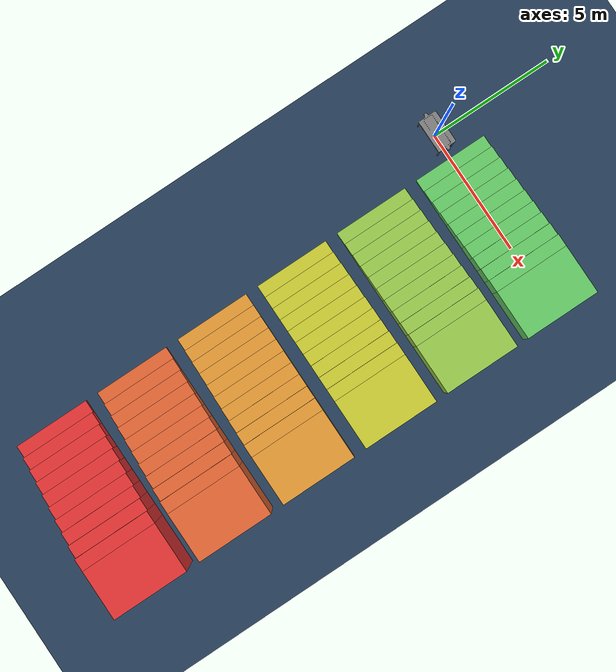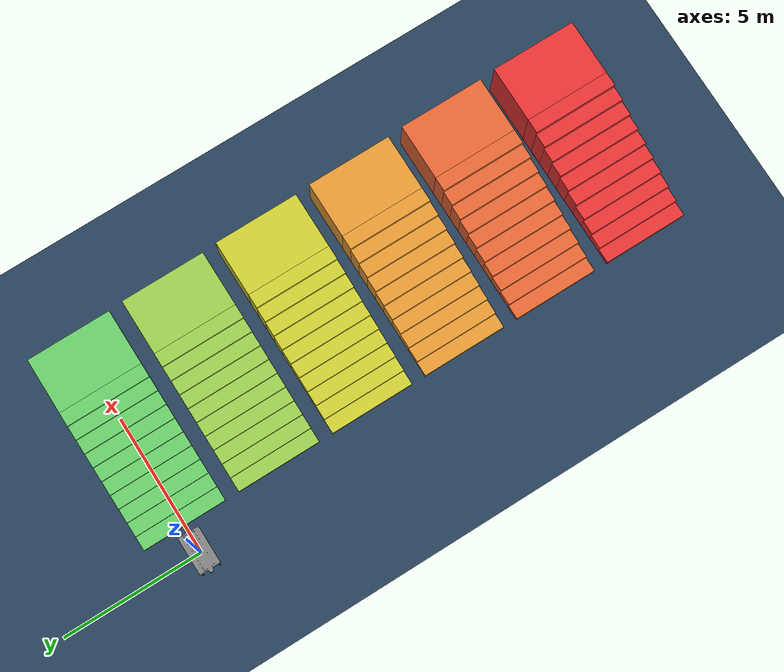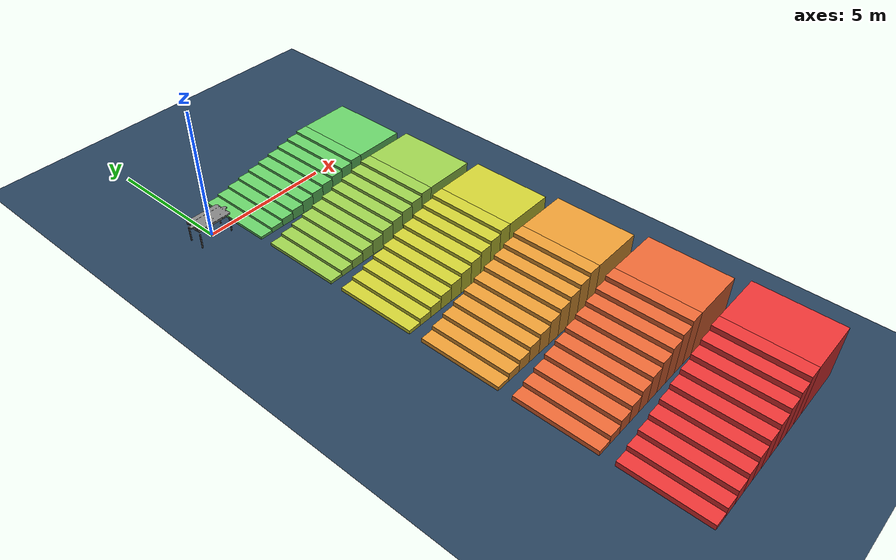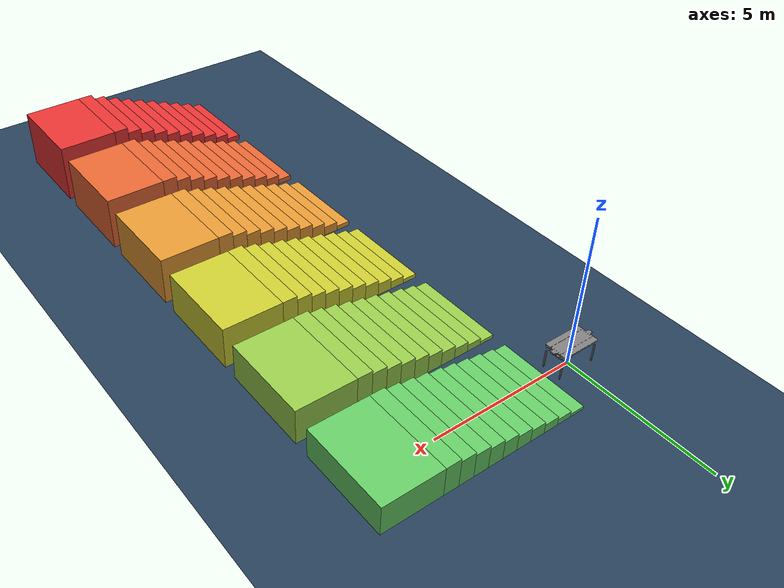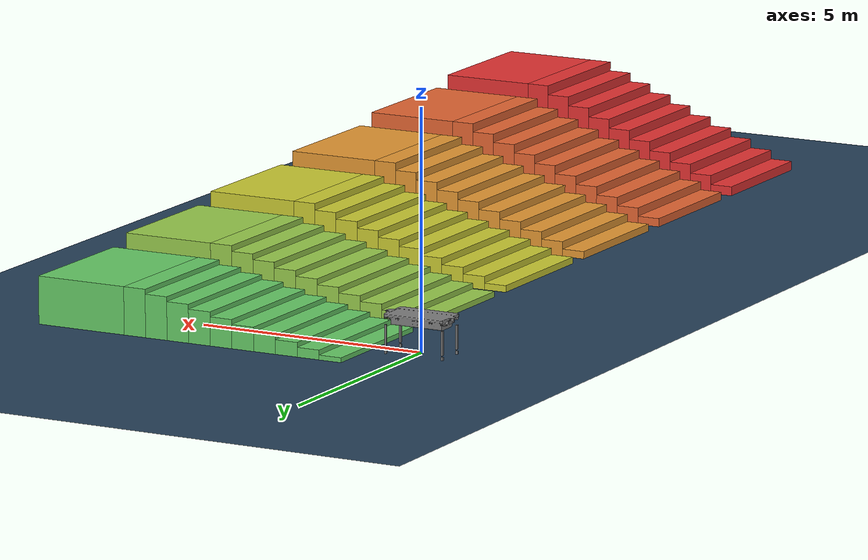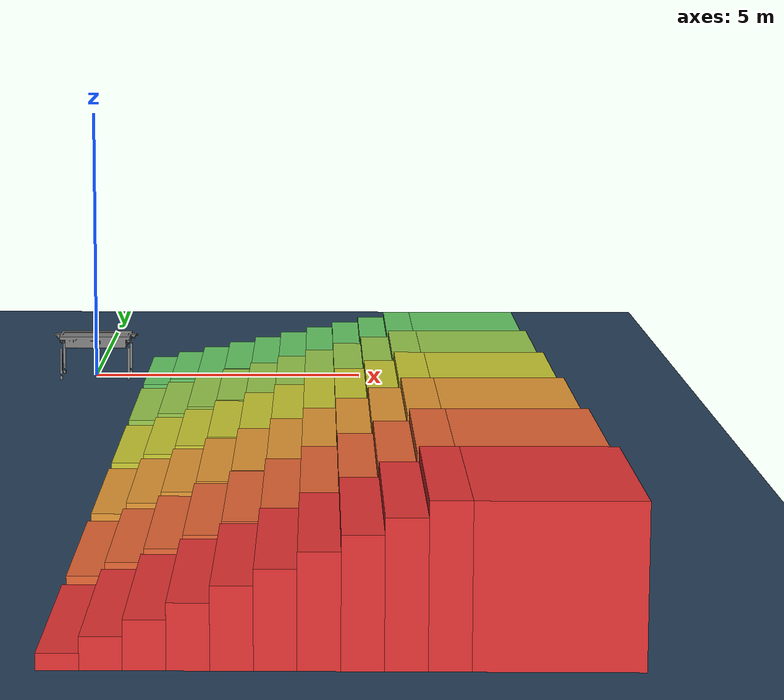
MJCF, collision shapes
<mujoco model="qilin scene">
  <include file="qilin.xml" />

  <statistic center="0 0 0.1" extent="0.8" />

  <visual>
    <headlight diffuse="0.6 0.6 0.6" ambient="0.3 0.3 0.3" specular="0 0 0" />
    <rgba haze="0.15 0.25 0.35 1" />
    <global azimuth="-130" elevation="-20" />
  </visual>

  <asset>
    <texture type="skybox" builtin="gradient" rgb1="0.3 0.5 0.7" rgb2="0 0 0" width="512" height="3072" />
    <texture type="2d" name="groundplane" builtin="checker" mark="edge" rgb1="0.2 0.3 0.4" rgb2="0.1 0.2 0.3" markrgb="0.8 0.8 0.8" width="300" height="300" />
    <material name="groundplane" texture="groundplane" texuniform="true" texrepeat="5 5" reflectance="0.2" />
  </asset>

  <worldbody>
    <light pos="0 0 1.5" dir="0 0 -1" directional="true" />
    <geom name="floor" size="0 0 0.05" type="plane" material="groundplane" />

    <geom type="box" pos="1.25 0 0.05" size="0.25 1.5 0.05" rgba="0.4 0.8 0.4 1" friction="1.2 0.01 0.005"/>
    <geom type="box" pos="1.75 0 0.10" size="0.25 1.5 0.10" rgba="0.4 0.8 0.4 1" friction="1.2 0.01 0.005"/>
    <geom type="box" pos="2.25 0 0.15" size="0.25 1.5 0.15" rgba="0.4 0.8 0.4 1" friction="1.2 0.01 0.005"/>
    <geom type="box" pos="2.75 0 0.20" size="0.25 1.5 0.20" rgba="0.4 0.8 0.4 1" friction="1.2 0.01 0.005"/>
    <geom type="box" pos="3.25 0 0.25" size="0.25 1.5 0.25" rgba="0.4 0.8 0.4 1" friction="1.2 0.01 0.005"/>
    <geom type="box" pos="3.75 0 0.30" size="0.25 1.5 0.30" rgba="0.4 0.8 0.4 1" friction="1.2 0.01 0.005"/>
    <geom type="box" pos="4.25 0 0.35" size="0.25 1.5 0.35" rgba="0.4 0.8 0.4 1" friction="1.2 0.01 0.005"/>
    <geom type="box" pos="4.75 0 0.40" size="0.25 1.5 0.40" rgba="0.4 0.8 0.4 1" friction="1.2 0.01 0.005"/>
    <geom type="box" pos="5.25 0 0.45" size="0.25 1.5 0.45" rgba="0.4 0.8 0.4 1" friction="1.2 0.01 0.005"/>
    <geom type="box" pos="5.75 0 0.50" size="0.25 1.5 0.50" rgba="0.4 0.8 0.4 1" friction="1.2 0.01 0.005"/>
    <geom type="box" pos="7.00 0 0.50" size="1.00 1.5 0.50" rgba="0.4 0.8 0.4 1" friction="1.2 0.01 0.005"/>

    <geom type="box" pos="1.25 -3.5 0.06" size="0.25 1.5 0.06" rgba="0.6 0.8 0.3 1" friction="1.2 0.01 0.005"/>
    <geom type="box" pos="1.75 -3.5 0.12" size="0.25 1.5 0.12" rgba="0.6 0.8 0.3 1" friction="1.2 0.01 0.005"/>
    <geom type="box" pos="2.25 -3.5 0.18" size="0.25 1.5 0.18" rgba="0.6 0.8 0.3 1" friction="1.2 0.01 0.005"/>
    <geom type="box" pos="2.75 -3.5 0.24" size="0.25 1.5 0.24" rgba="0.6 0.8 0.3 1" friction="1.2 0.01 0.005"/>
    <geom type="box" pos="3.25 -3.5 0.30" size="0.25 1.5 0.30" rgba="0.6 0.8 0.3 1" friction="1.2 0.01 0.005"/>
    <geom type="box" pos="3.75 -3.5 0.36" size="0.25 1.5 0.36" rgba="0.6 0.8 0.3 1" friction="1.2 0.01 0.005"/>
    <geom type="box" pos="4.25 -3.5 0.42" size="0.25 1.5 0.42" rgba="0.6 0.8 0.3 1" friction="1.2 0.01 0.005"/>
    <geom type="box" pos="4.75 -3.5 0.48" size="0.25 1.5 0.48" rgba="0.6 0.8 0.3 1" friction="1.2 0.01 0.005"/>
    <geom type="box" pos="5.25 -3.5 0.54" size="0.25 1.5 0.54" rgba="0.6 0.8 0.3 1" friction="1.2 0.01 0.005"/>
    <geom type="box" pos="5.75 -3.5 0.60" size="0.25 1.5 0.60" rgba="0.6 0.8 0.3 1" friction="1.2 0.01 0.005"/>
    <geom type="box" pos="7.00 -3.5 0.60" size="1.00 1.5 0.60" rgba="0.6 0.8 0.3 1" friction="1.2 0.01 0.005"/>

    <geom type="box" pos="1.25 -7.0 0.07" size="0.25 1.5 0.07" rgba="0.8 0.8 0.2 1" friction="1.2 0.01 0.005"/>
    <geom type="box" pos="1.75 -7.0 0.14" size="0.25 1.5 0.14" rgba="0.8 0.8 0.2 1" friction="1.2 0.01 0.005"/>
    <geom type="box" pos="2.25 -7.0 0.21" size="0.25 1.5 0.21" rgba="0.8 0.8 0.2 1" friction="1.2 0.01 0.005"/>
    <geom type="box" pos="2.75 -7.0 0.28" size="0.25 1.5 0.28" rgba="0.8 0.8 0.2 1" friction="1.2 0.01 0.005"/>
    <geom type="box" pos="3.25 -7.0 0.35" size="0.25 1.5 0.35" rgba="0.8 0.8 0.2 1" friction="1.2 0.01 0.005"/>
    <geom type="box" pos="3.75 -7.0 0.42" size="0.25 1.5 0.42" rgba="0.8 0.8 0.2 1" friction="1.2 0.01 0.005"/>
    <geom type="box" pos="4.25 -7.0 0.49" size="0.25 1.5 0.49" rgba="0.8 0.8 0.2 1" friction="1.2 0.01 0.005"/>
    <geom type="box" pos="4.75 -7.0 0.56" size="0.25 1.5 0.56" rgba="0.8 0.8 0.2 1" friction="1.2 0.01 0.005"/>
    <geom type="box" pos="5.25 -7.0 0.63" size="0.25 1.5 0.63" rgba="0.8 0.8 0.2 1" friction="1.2 0.01 0.005"/>
    <geom type="box" pos="5.75 -7.0 0.70" size="0.25 1.5 0.70" rgba="0.8 0.8 0.2 1" friction="1.2 0.01 0.005"/>
    <geom type="box" pos="7.00 -7.0 0.70" size="1.00 1.5 0.70" rgba="0.8 0.8 0.2 1" friction="1.2 0.01 0.005"/>

    <geom type="box" pos="1.25 -10.5 0.08" size="0.25 1.5 0.08" rgba="0.9 0.6 0.2 1" friction="1.2 0.01 0.005"/>
    <geom type="box" pos="1.75 -10.5 0.16" size="0.25 1.5 0.16" rgba="0.9 0.6 0.2 1" friction="1.2 0.01 0.005"/>
    <geom type="box" pos="2.25 -10.5 0.24" size="0.25 1.5 0.24" rgba="0.9 0.6 0.2 1" friction="1.2 0.01 0.005"/>
    <geom type="box" pos="2.75 -10.5 0.32" size="0.25 1.5 0.32" rgba="0.9 0.6 0.2 1" friction="1.2 0.01 0.005"/>
    <geom type="box" pos="3.25 -10.5 0.40" size="0.25 1.5 0.40" rgba="0.9 0.6 0.2 1" friction="1.2 0.01 0.005"/>
    <geom type="box" pos="3.75 -10.5 0.48" size="0.25 1.5 0.48" rgba="0.9 0.6 0.2 1" friction="1.2 0.01 0.005"/>
    <geom type="box" pos="4.25 -10.5 0.56" size="0.25 1.5 0.56" rgba="0.9 0.6 0.2 1" friction="1.2 0.01 0.005"/>
    <geom type="box" pos="4.75 -10.5 0.64" size="0.25 1.5 0.64" rgba="0.9 0.6 0.2 1" friction="1.2 0.01 0.005"/>
    <geom type="box" pos="5.25 -10.5 0.72" size="0.25 1.5 0.72" rgba="0.9 0.6 0.2 1" friction="1.2 0.01 0.005"/>
    <geom type="box" pos="5.75 -10.5 0.80" size="0.25 1.5 0.80" rgba="0.9 0.6 0.2 1" friction="1.2 0.01 0.005"/>
    <geom type="box" pos="7.00 -10.5 0.80" size="1.00 1.5 0.80" rgba="0.9 0.6 0.2 1" friction="1.2 0.01 0.005"/>

    <geom type="box" pos="1.25 -14.0 0.09" size="0.25 1.5 0.09" rgba="0.9 0.4 0.2 1" friction="1.2 0.01 0.005"/>
    <geom type="box" pos="1.75 -14.0 0.18" size="0.25 1.5 0.18" rgba="0.9 0.4 0.2 1" friction="1.2 0.01 0.005"/>
    <geom type="box" pos="2.25 -14.0 0.27" size="0.25 1.5 0.27" rgba="0.9 0.4 0.2 1" friction="1.2 0.01 0.005"/>
    <geom type="box" pos="2.75 -14.0 0.36" size="0.25 1.5 0.36" rgba="0.9 0.4 0.2 1" friction="1.2 0.01 0.005"/>
    <geom type="box" pos="3.25 -14.0 0.45" size="0.25 1.5 0.45" rgba="0.9 0.4 0.2 1" friction="1.2 0.01 0.005"/>
    <geom type="box" pos="3.75 -14.0 0.54" size="0.25 1.5 0.54" rgba="0.9 0.4 0.2 1" friction="1.2 0.01 0.005"/>
    <geom type="box" pos="4.25 -14.0 0.63" size="0.25 1.5 0.63" rgba="0.9 0.4 0.2 1" friction="1.2 0.01 0.005"/>
    <geom type="box" pos="4.75 -14.0 0.72" size="0.25 1.5 0.72" rgba="0.9 0.4 0.2 1" friction="1.2 0.01 0.005"/>
    <geom type="box" pos="5.25 -14.0 0.81" size="0.25 1.5 0.81" rgba="0.9 0.4 0.2 1" friction="1.2 0.01 0.005"/>
    <geom type="box" pos="5.75 -14.0 0.90" size="0.25 1.5 0.90" rgba="0.9 0.4 0.2 1" friction="1.2 0.01 0.005"/>
    <geom type="box" pos="7.00 -14.0 0.90" size="1.00 1.5 0.90" rgba="0.9 0.4 0.2 1" friction="1.2 0.01 0.005"/>

    <geom type="box" pos="1.25 -17.5 0.10" size="0.25 1.5 0.10" rgba="0.9 0.2 0.2 1" friction="1.2 0.01 0.005"/>
    <geom type="box" pos="1.75 -17.5 0.20" size="0.25 1.5 0.20" rgba="0.9 0.2 0.2 1" friction="1.2 0.01 0.005"/>
    <geom type="box" pos="2.25 -17.5 0.30" size="0.25 1.5 0.30" rgba="0.9 0.2 0.2 1" friction="1.2 0.01 0.005"/>
    <geom type="box" pos="2.75 -17.5 0.40" size="0.25 1.5 0.40" rgba="0.9 0.2 0.2 1" friction="1.2 0.01 0.005"/>
    <geom type="box" pos="3.25 -17.5 0.50" size="0.25 1.5 0.50" rgba="0.9 0.2 0.2 1" friction="1.2 0.01 0.005"/>
    <geom type="box" pos="3.75 -17.5 0.60" size="0.25 1.5 0.60" rgba="0.9 0.2 0.2 1" friction="1.2 0.01 0.005"/>
    <geom type="box" pos="4.25 -17.5 0.70" size="0.25 1.5 0.70" rgba="0.9 0.2 0.2 1" friction="1.2 0.01 0.005"/>
    <geom type="box" pos="4.75 -17.5 0.80" size="0.25 1.5 0.80" rgba="0.9 0.2 0.2 1" friction="1.2 0.01 0.005"/>
    <geom type="box" pos="5.25 -17.5 0.90" size="0.25 1.5 0.90" rgba="0.9 0.2 0.2 1" friction="1.2 0.01 0.005"/>
    <geom type="box" pos="5.75 -17.5 1.00" size="0.25 1.5 1.00" rgba="0.9 0.2 0.2 1" friction="1.2 0.01 0.005"/>
    <geom type="box" pos="7.00 -17.5 1.00" size="1.00 1.5 1.00" rgba="0.9 0.2 0.2 1" friction="1.2 0.01 0.005"/>

  </worldbody>
</mujoco>

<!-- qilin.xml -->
<mujoco model="legged_yscgo">
  <compiler angle="radian" meshdir="assets" autolimits="true"/>

  <default>
    <default class="yscgo">
      <geom type="mesh"/>
      <joint damping="1" armature="0.1"/>
      <default class="visual">
        <geom contype="0" conaffinity="0" group="2"/>
      </default>
      <default class="collision">
        <geom group="3" mass="0" density="0"/>
      </default>
      <site size="0.001" rgba="0.5 0.5 0.5 0.3" group="4"/>
    </default>
  </default>

  <asset>
    <mesh name="base_link" file="base_link.STL"/>
    <mesh name="FR_hip_link" file="RF-hip-link.STL"/>
    <mesh name="FR_thigh_link" file="RF-thigh-link.STL"/>
    <mesh name="FR_calf_link" file="RF-calf-link.STL"/>
    <mesh name="FL_hip_link" file="LF-hip-link.STL"/>
    <mesh name="FL_thigh_link" file="LF-thigh-link.STL"/>
    <mesh name="FL_calf_link" file="LF-calf-link.STL"/>
    <mesh name="RR_hip_link" file="RB-hip-link.STL"/>
    <mesh name="RR_thigh_link" file="RB-thigh-link.STL"/>
    <mesh name="RR_calf_link" file="RB-calf-link.STL"/>
    <mesh name="RL_hip_link" file="LB-hip-link.STL"/>
    <mesh name="RL_thigh_link" file="LB-thigh-link.STL"/>
    <mesh name="RL_calf_link" file="LB-calf-link.STL"/>
  </asset>

  <worldbody>
    <body name="base" pos="0 0 0.8" childclass="yscgo">
      <inertial pos="0.002148 -0.000388 -0.103293" mass="159.277" fullinertia="6.637751 24.08774 28.83469 -0.01443162 0.003251106 -0.002196445"/>
      <joint name="floating_base_joint" type="free"/>

      <geom type="mesh" mesh="base_link" class="visual" rgba="0.54901960784 0.04705882353 0.0431372549 1"/>
      <geom type="mesh" mesh="base_link" class="collision"/>

      <site name="imu" pos="0 0 0"/>

      <body name="FR_hip" pos="0.641 -0.309 -0.097">
        <inertial pos="-0.170224 0.000828 -0.087717" mass="12.360" fullinertia="0.03765034 0.2272831 0.2112761 -0.001578884 0.01147413 -0.000346967"/>
        <joint name="FR_hip_joint" axis="1 0 0" range="-0.349 0.349"/>
        <geom type="mesh" mesh="FR_hip_link" class="visual" rgba="0.949019 0.752941 0.337255 1"/>

        <body name="FR_thigh" pos="0 0 -0.1065">
          <inertial pos="0.01379 0.000024 -0.3409" mass="11.479" fullinertia="0.3640088 0.366903 0.03063003 -0.000009152 -0.0134279 0.000023857"/>
          <joint name="FR_thigh_joint" axis="0 1 0" range="-1.04719755 1.22173047"/>
          <geom type="mesh" mesh="FR_thigh_link" class="visual" rgba="0.949019 0.752941 0.337255 1"/>
          <geom type="box" size="0.25 0.02 0.02" pos="0 0 -0.27" euler="0 1.57079632 0" class="collision"/>

          <body name="FR_calf" pos="0 0 -0.55">
            <inertial pos="-0.04685 -0.000003 -0.2845" mass="4.915" fullinertia="0.175327 0.1747803 0.01075076 -0.000000076 -0.01221075 0.000004301"/>
            <joint name="FR_calf_joint" axis="0 1 0" range="-2.7925268 -0.01745329"/>
            <geom type="mesh" mesh="FR_calf_link" class="visual" rgba="0.54901960784 0.04705882353 0.0431372549 1"/>
            <geom type="box" size="0.25 0.0175 0.0225" pos="0 0 -0.25" euler="0 1.57079632 0" class="collision"/>

            <body name="FR_foot" pos="-0.08 0 -0.4936">
              <inertial pos="0 0 0" mass="0.0450952" fullinertia="3.2581282e-05 3.2581282e-05 3.2581282e-05 0 0 0"/>
              <geom type="sphere" size="0.0425" class="visual" rgba="0.949019 0.752941 0.337255 1"/>
              <geom type="sphere" size="0.0425" group="1" rgba="0.949 0.753 0.337 1"/>
              <site name="FR_foot_touch" pos="0 0 0"/>
            </body>
          </body>
        </body>
      </body>

      <body name="FL_hip" pos="0.641 0.309 -0.097">
        <inertial pos="-0.1702 -0.000782 -0.08772" mass="12.360" fullinertia="0.03765126 0.2272831 0.211277 0.001607696 0.01147413 0.00033408"/>
        <joint name="FL_hip_joint" axis="1 0 0" range="-0.349 0.349"/>
        <geom type="mesh" mesh="FL_hip_link" class="visual" rgba="0.949019 0.752941 0.337255 1"/>

        <body name="FL_thigh" pos="0 0 -0.1065">
          <inertial pos="0.01379 0.000024 -0.3409" mass="11.479" fullinertia="0.3640088 0.366903 0.03063003 -0.000009152 -0.0134279 0.000023857"/>
          <joint name="FL_thigh_joint" axis="0 1 0" range="-1.04719755 1.22173047"/>
          <geom type="mesh" mesh="FL_thigh_link" class="visual" rgba="0.949019 0.752941 0.337255 1"/>
          <geom type="box" size="0.25 0.02 0.02" pos="0 0 -0.27" euler="0 1.57079632 0" class="collision"/>

          <body name="FL_calf" pos="0 0 -0.55">
            <inertial pos="-0.04685 -0.000003 -0.2845" mass="4.915" fullinertia="0.175327 0.1747803 0.01075076 -0.000000076 -0.01221075 0.000004301"/>
            <joint name="FL_calf_joint" axis="0 1 0" range="-2.7925268 -0.01745329"/>
            <geom type="mesh" mesh="FL_calf_link" class="visual" rgba="0.54901960784 0.04705882353 0.0431372549 1"/>
            <geom type="box" size="0.25 0.0175 0.0225" pos="0 0 -0.25" euler="0 1.57079632 0" class="collision"/>

            <body name="FL_foot" pos="-0.08 0 -0.4936">
              <inertial pos="0 0 0" mass="0.0450952" fullinertia="3.2581282e-05 3.2581282e-05 3.2581282e-05 0 0 0"/>
              <geom type="sphere" size="0.0425" class="visual" rgba="0.949019 0.752941 0.337255 1"/>
              <geom type="sphere" size="0.0425" group="1" rgba="0.949 0.753 0.337 1"/>
              <site name="FL_foot_touch" pos="0 0 0"/>
            </body>
          </body>
        </body>
      </body>

      <body name="RR_hip" pos="-0.641 -0.309 -0.097">
        <inertial pos="0.1708 0.000691 -0.09055" mass="12.300" fullinertia="0.04096694 0.2306614 0.2112255 0.001424226 -0.013273 -0.000308894"/>
        <joint name="RR_hip_joint" axis="1 0 0" range="-0.349 0.349"/>
        <geom type="mesh" mesh="RR_hip_link" class="visual" rgba="0.949019 0.752941 0.337255 1"/>

        <body name="RR_thigh" pos="0 0 -0.1065">
          <inertial pos="-0.005588 0.000032 -0.3437" mass="11.048" fullinertia="0.3509072 0.3538119 0.02872637 -0.000007429 0.02101851 -0.000001778"/>
          <joint name="RR_thigh_joint" axis="0 1 0" range="-1.04719755 1.22173047"/>
          <geom type="mesh" mesh="RR_thigh_link" class="visual" rgba="0.949019 0.752941 0.337255 1"/>
          <geom type="box" size="0.25 0.02 0.02" pos="0 0 -0.27" euler="0 1.57079632 0" class="collision"/>

          <body name="RR_calf" pos="0 0 -0.55">
            <inertial pos="-0.04685 -0.000003 -0.2845" mass="4.915" fullinertia="0.175327 0.1747803 0.01075076 -0.000000076 -0.01221075 0.000004301"/>
            <joint name="RR_calf_joint" axis="0 1 0" range="-2.7925268 -0.01745329"/>
            <geom type="mesh" mesh="RR_calf_link" class="visual" rgba="0.54901960784 0.04705882353 0.0431372549 1"/>
            <geom type="box" size="0.25 0.0175 0.0225" pos="0 0 -0.25" euler="0 1.57079632 0" class="collision"/>

            <body name="RR_foot" pos="-0.08 0 -0.4936">
              <inertial pos="0 0 0" mass="0.0450952" fullinertia="3.2581282e-05 3.2581282e-05 3.2581282e-05 0 0 0"/>
              <geom type="sphere" size="0.0425" class="visual" rgba="0.949019 0.752941 0.337255 1"/>
              <geom type="sphere" size="0.0425" group="1" rgba="0.949 0.753 0.337 1"/>
              <site name="RR_foot_touch" pos="0 0 0"/>
            </body>
          </body>
        </body>
      </body>

      <body name="RL_hip" pos="-0.641 0.309 -0.097">
        <inertial pos="0.1705 -0.000789 -0.09047" mass="12.322" fullinertia="0.04107107 0.2312771 0.2118615 -0.001620314 -0.01312072 0.000386643"/>
        <joint name="RL_hip_joint" axis="1 0 0" range="-0.349 0.349"/>
        <geom type="mesh" mesh="RL_hip_link" class="visual" rgba="0.949019 0.752941 0.337255 1"/>

        <body name="RL_thigh" pos="0 0 -0.1065">
          <inertial pos="-0.005588 0.000032 -0.3437" mass="11.048" fullinertia="0.3509072 0.3538119 0.02838134 -0.000007429 0.02101851 -0.000001778"/>
          <joint name="RL_thigh_joint" axis="0 1 0" range="-1.04719755 1.22173047"/>
          <geom type="mesh" mesh="RL_thigh_link" class="visual" rgba="0.949019 0.752941 0.337255 1"/>
          <geom type="box" size="0.25 0.02 0.02" pos="0 0 -0.27" euler="0 1.57079632 0" class="collision"/>

          <body name="RL_calf" pos="0 0 -0.55">
            <inertial pos="-0.04685 -0.000003 -0.2845" mass="4.915" fullinertia="0.175327 0.1747803 0.01075076 -0.000000076 -0.01221075 0.000004301"/>
            <joint name="RL_calf_joint" axis="0 1 0" range="-2.7925268 -0.01745329"/>
            <geom type="mesh" mesh="RL_calf_link" class="visual" rgba="0.54901960784 0.04705882353 0.0431372549 1"/>
            <geom type="box" size="0.25 0.0175 0.0225" pos="0 0 -0.25" euler="0 1.57079632 0" class="collision"/>

            <body name="RL_foot" pos="-0.08 0 -0.4936">
              <inertial pos="0 0 0" mass="0.0450952" fullinertia="3.2581282e-05 3.2581282e-05 3.2581282e-05 0 0 0"/>
              <geom type="sphere" size="0.0425" class="visual" rgba="0.949019 0.752941 0.337255 1"/>
              <geom type="sphere" size="0.0425" group="1" rgba="0.949 0.753 0.337 1"/>
              <site name="RL_foot_touch" pos="0 0 0"/>
            </body>
          </body>
        </body>
      </body>

    </body>
  </worldbody>

  <actuator>
    <motor class="yscgo" ctrlrange="-200 200" name="FR_hip" joint="FR_hip_joint"/>
    <motor class="yscgo" ctrlrange="-350 350" name="FR_thigh" joint="FR_thigh_joint"/>
    <motor class="yscgo" ctrlrange="-600 600" name="FR_calf" joint="FR_calf_joint"/>

    <motor class="yscgo" ctrlrange="-200 200" name="FL_hip" joint="FL_hip_joint"/>
    <motor class="yscgo" ctrlrange="-350 350" name="FL_thigh" joint="FL_thigh_joint"/>
    <motor class="yscgo" ctrlrange="-600 600" name="FL_calf" joint="FL_calf_joint"/>

    <motor class="yscgo" ctrlrange="-200 200" name="RR_hip" joint="RR_hip_joint"/>
    <motor class="yscgo" ctrlrange="-450 450" name="RR_thigh" joint="RR_thigh_joint"/>
    <motor class="yscgo" ctrlrange="-570 570" name="RR_calf" joint="RR_calf_joint"/>

    <motor class="yscgo" ctrlrange="-200 200" name="RL_hip" joint="RL_hip_joint"/>
    <motor class="yscgo" ctrlrange="-450 450" name="RL_thigh" joint="RL_thigh_joint"/>
    <motor class="yscgo" ctrlrange="-570 570" name="RL_calf" joint="RL_calf_joint"/>
  </actuator>

  <sensor>
    <jointpos name="FR_hip_pos" joint="FR_hip_joint" />
    <jointpos name="FR_thigh_pos" joint="FR_thigh_joint" />
    <jointpos name="FR_calf_pos" joint="FR_calf_joint" />
    <jointpos name="FL_hip_pos" joint="FL_hip_joint" />
    <jointpos name="FL_thigh_pos" joint="FL_thigh_joint" />
    <jointpos name="FL_calf_pos" joint="FL_calf_joint" />
    <jointpos name="RR_hip_pos" joint="RR_hip_joint" />
    <jointpos name="RR_thigh_pos" joint="RR_thigh_joint" />
    <jointpos name="RR_calf_pos" joint="RR_calf_joint" />
    <jointpos name="RL_hip_pos" joint="RL_hip_joint" />
    <jointpos name="RL_thigh_pos" joint="RL_thigh_joint" />
    <jointpos name="RL_calf_pos" joint="RL_calf_joint" />

    <jointvel name="FR_hip_vel" joint="FR_hip_joint" />
    <jointvel name="FR_thigh_vel" joint="FR_thigh_joint" />
    <jointvel name="FR_calf_vel" joint="FR_calf_joint" />
    <jointvel name="FL_hip_vel" joint="FL_hip_joint" />
    <jointvel name="FL_thigh_vel" joint="FL_thigh_joint" />
    <jointvel name="FL_calf_vel" joint="FL_calf_joint" />
    <jointvel name="RR_hip_vel" joint="RR_hip_joint" />
    <jointvel name="RR_thigh_vel" joint="RR_thigh_joint" />
    <jointvel name="RR_calf_vel" joint="RR_calf_joint" />
    <jointvel name="RL_hip_vel" joint="RL_hip_joint" />
    <jointvel name="RL_thigh_vel" joint="RL_thigh_joint" />
    <jointvel name="RL_calf_vel" joint="RL_calf_joint" />

    <jointactuatorfrc name="FR_hip_torque" joint="FR_hip_joint" noise="0.01" />
    <jointactuatorfrc name="FR_thigh_torque" joint="FR_thigh_joint" noise="0.01" />
    <jointactuatorfrc name="FR_calf_torque" joint="FR_calf_joint" noise="0.01" />
    <jointactuatorfrc name="FL_hip_torque" joint="FL_hip_joint" noise="0.01" />
    <jointactuatorfrc name="FL_thigh_torque" joint="FL_thigh_joint" noise="0.01" />
    <jointactuatorfrc name="FL_calf_torque" joint="FL_calf_joint" noise="0.01" />
    <jointactuatorfrc name="RR_hip_torque" joint="RR_hip_joint" noise="0.01" />
    <jointactuatorfrc name="RR_thigh_torque" joint="RR_thigh_joint" noise="0.01" />
    <jointactuatorfrc name="RR_calf_torque" joint="RR_calf_joint" noise="0.01" />
    <jointactuatorfrc name="RL_hip_torque" joint="RL_hip_joint" noise="0.01" />
    <jointactuatorfrc name="RL_thigh_torque" joint="RL_thigh_joint" noise="0.01" />
    <jointactuatorfrc name="RL_calf_torque" joint="RL_calf_joint" noise="0.01" />

    <framequat name="imu_quat" objtype="site" objname="imu" />
    <gyro name="imu_gyro" site="imu" />
    <accelerometer name="imu_acc" site="imu" />

    <framepos name="frame_pos" objtype="site" objname="imu" />
    <framelinvel name="frame_vel" objtype="site" objname="imu" />
  </sensor>

</mujoco>
